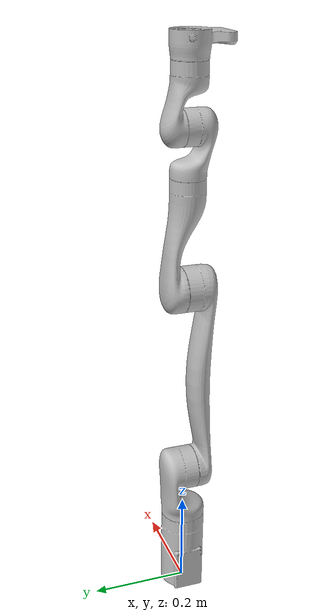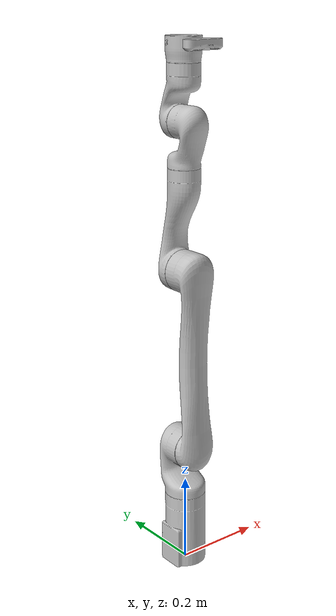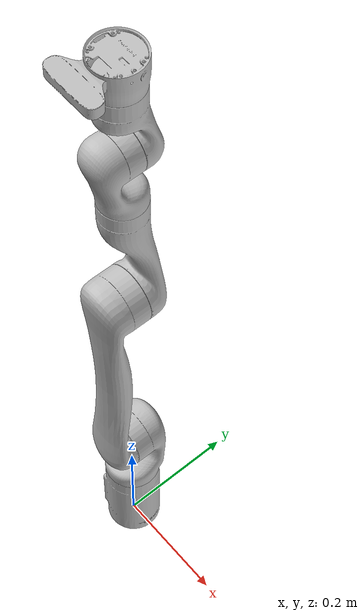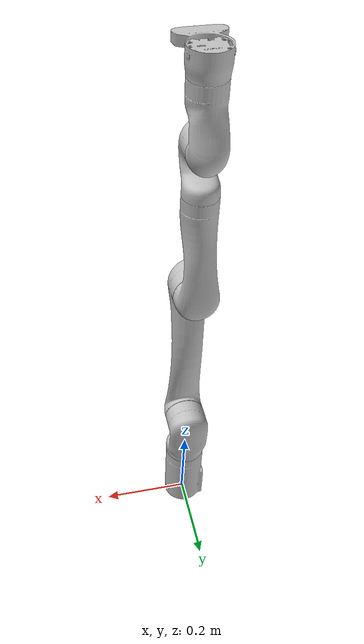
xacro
<?xml version="1.0"?>

<robot name="gen3" xmlns:xacro="http://ros.org/wiki/xacro">

    <!-- Arguments -->
    <xacro:arg name="arm" default="gen3" />
    <xacro:arg name="dof" default="6" />
    <xacro:arg name="vision" default="true" />
    <xacro:arg name="base" default="false"/>

    <xacro:arg name="gripper" default="" />

    <xacro:arg name="sim" default="true" />
    <xacro:arg name="prefix" default="" />

    <xacro:include filename="$(find kortex_description)/robots/kortex_robot.xacro" />
    <xacro:load_robot arm="$(arg arm)" gripper="$(arg gripper)" dof="$(arg dof)" vision="$(arg vision)" sim="$(arg sim)" prefix="$(arg prefix)" base="$(arg base)"/>

</robot>

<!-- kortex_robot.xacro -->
<robot xmlns:xacro="http://ros.org/wiki/xacro">

    <xacro:macro name="load_robot" params="arm gripper dof vision sim prefix parent_link:='world' origin_xyz:='0 0 0' origin_rpy:='0 0 0'">

        <!-- Files to include -->
        <xacro:include filename="$(find kortex_description)/arms/${arm}/${dof}dof/urdf/${arm}_macro.xacro" />
        <xacro:unless value="${not gripper}">
            <xacro:include filename="$(find kortex_description)/grippers/${gripper}/urdf/${gripper}_macro.xacro" />
        </xacro:unless>

        <xacro:if value="${sim}">
            <!-- Arm transmission elements-->
            <xacro:include filename="$(find kortex_description)/arms/${arm}/${dof}dof/urdf/${arm}_transmission_macro.xacro" />
            <!-- Gripper transmission elements if there is a gripper-->
            <xacro:unless value="${not gripper}">
                <xacro:include filename="$(find kortex_description)/grippers/${gripper}/urdf/${gripper}_transmission_macro.xacro" />
            </xacro:unless>
        </xacro:if>

        <!-- Run the macros and mount the robot -->

        <!-- For gazebo when parent_link is world -->
        <xacro:if value="${(sim and parent_link == 'world')}">
            <link name="world" />
        </xacro:if>

        <!-- Mount robot with the world or base robot -->
        <joint name="${prefix}mount_joint" type="fixed">
            <child link="${prefix}base_link" />
            <parent link="${parent_link}" />
            <origin xyz="${origin_xyz}" rpy="${origin_rpy}"/>
        </joint>

        <!-- Load the arm -->
        <xacro:load_arm parent="" dof="${dof}" vision="${vision}" prefix="${prefix}">
            <origin xyz="0 0 0" rpy="0 0 0"/>
        </xacro:load_arm>

        <!-- Load the gripper -->
        <xacro:unless value="${not gripper}">
            <!-- last_arm_link is defined in "$(find kortex_description)/arms/${arm}/urdf/${arm}_macro.xacro" -->
            <xacro:load_gripper parent="${prefix}${last_arm_link}"  prefix="${prefix}"/>
        </xacro:unless>
        <!-- If no gripper, define tool frame here -->
        <xacro:if value="${not gripper}">
            <link name="${prefix}tool_frame"/>
            <joint name="${prefix}tool_frame_joint" type="fixed">
                <origin xyz="0 0 0" rpy="0 0 0" />
                <parent link="${prefix}${last_arm_link}" />
                <child link="${prefix}tool_frame" />
                <axis xyz="0 0 0" />
            </joint>
        </xacro:if>

        <!-- Load the Gazebo transmissions and gazebo_ros_control plugin -->
        <xacro:if value="${sim}">

            <xacro:load_gazebo_arm_transmissions prefix="${prefix}"/>

            <xacro:unless value="${not gripper}">
                <xacro:load_gazebo_gripper_transmissions prefix="${prefix}"/>
            </xacro:unless>

            <gazebo>
                <plugin name="gazebo_ros_control" filename="libgazebo_ros_control.so">
                    <legacyModeNS>true</legacyModeNS>
                </plugin>
            </gazebo>

        </xacro:if>
    </xacro:macro>
</robot>

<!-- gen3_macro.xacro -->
<robot name="gen3_arm" xmlns:xacro="http://ros.org/wiki/xacro">

  <!-- Propagate last link name information because it is the gripper's parent link -->
  <xacro:property name="last_arm_link" value="end_effector_link"/>

  <xacro:macro name="load_arm" params="parent:='' dof vision prefix *origin">
    <link name="${prefix}base_link">
      <inertial>
        <origin xyz="-0.000648 -0.000166 0.084487" rpy="0 0 0" />
        <mass value="1.697" />
        <inertia ixx="0.004622" ixy="9E-06" ixz="6E-05" iyy="0.004495" iyz="9E-06" izz="0.002079" />
      </inertial>
      <visual>
        <origin xyz="0 0 0" rpy="0 0 0" />
        <geometry>
          <mesh filename="package://kortex_description/arms/gen3/${dof}dof/meshes/base_link.STL" />
        </geometry>
        <material name="">
          <color rgba="0.75294 0.75294 0.75294 1" />
        </material>
      </visual>
      <collision>
        <origin xyz="0 0 0" rpy="0 0 0" />
        <geometry>
          <mesh filename="package://kortex_description/arms/gen3/${dof}dof/meshes/base_link.STL" />
        </geometry>
      </collision>
    </link>
    <link name="${prefix}shoulder_link">
      <inertial>
        <origin xyz="-2.3E-05 -0.010364 -0.07336" rpy="0 0 0" />
        <mass value="1.377" />
        <inertia ixx="0.00457" ixy="1E-06" ixz="2E-06" iyy="0.004831" iyz="0.000448" izz="0.001409" />
      </inertial>
      <visual>
        <origin xyz="0 0 0" rpy="0 0 0" />
        <geometry>
          <mesh filename="package://kortex_description/arms/gen3/${dof}dof/meshes/shoulder_link.STL" />
        </geometry>
        <material name="">
          <color rgba="0.75294 0.75294 0.75294 1" />
        </material>
      </visual>
      <collision>
        <origin xyz="0 0 0" rpy="0 0 0" />
        <geometry>
          <mesh filename="package://kortex_description/arms/gen3/${dof}dof/meshes/shoulder_link.STL" />
        </geometry>
      </collision>
    </link>
    <joint name="${prefix}joint_1" type="continuous">
      <origin xyz="0 0 0.15643" rpy="-3.1416 0.0 0.0" />
      <parent link="${prefix}base_link" />
      <child link="${prefix}shoulder_link" />
      <axis xyz="0 0 1" />
      <limit effort="39" velocity="1.3963" />
    </joint>
    <link name="${prefix}bicep_link">
      <inertial>
        <origin xyz="3.5E-05 -0.208207 -0.01889" rpy="0 0 0" />
        <mass value="1.262" />
        <inertia ixx="0.046752" ixy="-9E-06" ixz="0" iyy="0.00085" iyz="-9.8E-05" izz="0.047188" />
      </inertial>
      <visual>
        <origin xyz="0 0 0" rpy="0 0 0" />
        <geometry>
          <mesh filename="package://kortex_description/arms/gen3/${dof}dof/meshes/bicep_link.STL" />
        </geometry>
        <material name="">
          <color rgba="0.75294 0.75294 0.75294 1" />
        </material>
      </visual>
      <collision>
        <origin xyz="0 0 0" rpy="0 0 0" />
        <geometry>
          <mesh filename="package://kortex_description/arms/gen3/${dof}dof/meshes/bicep_link.STL" />
        </geometry>
      </collision>
    </link>
    <joint name="${prefix}joint_2" type="revolute">
      <origin xyz="0 0.005375 -0.12838" rpy="1.5708 0.0 0.0" />
      <parent link="${prefix}shoulder_link" />
      <child link="${prefix}bicep_link" />
      <axis xyz="0 0 1" />
      <limit lower="-2.24" upper="2.24" effort="39" velocity="1.3963" />
    </joint>
    <link name="${prefix}forearm_link">
      <inertial>
        <origin xyz="1.8E-05 0.076168 -0.01397" rpy="0 0 0" />
        <mass value="0.93" />
        <inertia ixx="0.008292" ixy="-1E-06" ixz="0" iyy="0.000628" iyz="0.000432" izz="0.008464" />
      </inertial>
      <visual>
        <origin xyz="0 0 0" rpy="0 0 0" />
        <geometry>
          <mesh filename="package://kortex_description/arms/gen3/${dof}dof/meshes/forearm_link.STL" />
        </geometry>
        <material name="">
          <color rgba="0.75294 0.75294 0.75294 1" />
        </material>
      </visual>
      <collision>
        <origin xyz="0 0 0" rpy="0 0 0" />
        <geometry>
          <mesh filename="package://kortex_description/arms/gen3/${dof}dof/meshes/forearm_link.STL" />
        </geometry>
      </collision>
    </link>
    <joint name="${prefix}joint_3" type="revolute">
      <origin xyz="0 -0.41 0" rpy="3.1416 0 0" />
      <parent link="${prefix}bicep_link" />
      <child link="${prefix}forearm_link" />
      <axis xyz="0 0 1" />
      <limit lower="-2.57" upper="2.57" effort="39" velocity="1.3963" />
    </joint>
    <link name="${prefix}spherical_wrist_1_link">
      <inertial>
        <origin xyz="-1E-06 0.008486 -0.062937" rpy="0 0 0" />
        <mass value="0.6781" />
        <inertia ixx="0.001645" ixy="0" ixz="0" iyy="0.001666" iyz="-0.000234" izz="0.000389" />
      </inertial>
      <visual>
        <origin xyz="0 0 0" rpy="0 0 0" />
        <geometry>
          <mesh filename="package://kortex_description/arms/gen3/${dof}dof/meshes/spherical_wrist_1_link.STL" />
        </geometry>
        <material name="">
          <color rgba="0.75294 0.75294 0.75294 1" />
        </material>
      </visual>
      <collision>
        <origin xyz="0 0 0" rpy="0 0 0" />
        <geometry>
          <mesh filename="package://kortex_description/arms/gen3/${dof}dof/meshes/spherical_wrist_1_link.STL" />
        </geometry>
      </collision>
    </link>
    <joint name="${prefix}joint_4" type="continuous">
      <origin xyz="0 0.20843 -0.006375" rpy="1.5708 0.0 0.0" />
      <parent link="${prefix}forearm_link" />
      <child link="${prefix}spherical_wrist_1_link" />
      <axis xyz="0 0 1" />
      <limit effort="9" velocity="1.2218" />
    </joint>
    <link name="${prefix}spherical_wrist_2_link">
      <inertial>
        <origin xyz="-1E-06 0.046429 -0.008704" rpy="0 0 0" />
        <mass value="0.678" />
        <inertia ixx="0.001685" ixy="0" ixz="0" iyy="0.0004" iyz="0.000255" izz="0.001696" />
      </inertial>
      <visual>
        <origin xyz="0 0 0" rpy="0 0 0" />
        <geometry>
          <mesh filename="package://kortex_description/arms/gen3/${dof}dof/meshes/spherical_wrist_2_link.STL" />
        </geometry>
        <material name="">
          <color rgba="0.75294 0.75294 0.75294 1" />
        </material>
      </visual>
      <collision>
        <origin xyz="0 0 0" rpy="0 0 0" />
        <geometry>
          <mesh filename="package://kortex_description/arms/gen3/${dof}dof/meshes/spherical_wrist_2_link.STL" />
        </geometry>
      </collision>
    </link>
    <joint name="${prefix}joint_5" type="revolute">
      <origin xyz="0 -0.00017505 -0.10593" rpy="-1.5708 0.0 0.0" />
      <parent link="${prefix}spherical_wrist_1_link" />
      <child link="${prefix}spherical_wrist_2_link" />
      <axis xyz="0 0 1" />
      <limit lower="-2.09" upper="2.09" effort="9" velocity="1.2218" />
    </joint>
    <xacro:if value="${vision}">
    <link name="${prefix}bracelet_link">
      <inertial>
        <origin xyz="0.000281 0.011402 -0.029798" rpy="0 0 0" />
        <mass value="0.5" />
        <inertia ixx="0.000587" ixy="3E-06" ixz="3E-06" iyy="0.000369" iyz="-0.000118" izz="0.000609" />
      </inertial>
      <visual>
        <origin xyz="0 0 0" rpy="0 0 0" />
        <geometry>
          <mesh filename="package://kortex_description/arms/gen3/${dof}dof/meshes/bracelet_with_vision_link.STL" />
        </geometry>
        <material name="">
          <color rgba="0.75294 0.75294 0.75294 1" />
        </material>
      </visual>
      <collision>
        <origin xyz="0 0 0" rpy="0 0 0" />
        <geometry>
          <mesh filename="package://kortex_description/arms/gen3/${dof}dof/meshes/bracelet_with_vision_link.STL" />
        </geometry>
      </collision>
    </link>
    </xacro:if>
    <xacro:unless value="${vision}">
    <link name="${prefix}bracelet_link">
      <inertial>
        <origin xyz="-9.3E-05 0.000132 -0.022905" rpy="0 0 0" />
        <mass value="0.364" />
        <inertia ixx="0.000214" ixy="0" ixz="1E-06" iyy="0.000223" iyz="-2E-06" izz="0.00024" />
      </inertial>
      <visual>
        <origin xyz="0 0 0" rpy="0 0 0" />
        <geometry>
          <mesh filename="package://kortex_description/arms/gen3/${dof}dof/meshes/bracelet_no_vision_link.STL" />
        </geometry>
        <material name="">
          <color rgba="0.75294 0.75294 0.75294 1" />
        </material>
      </visual>
      <collision>
        <origin xyz="0 0 0" rpy="0 0 0" />
        <geometry>
          <mesh filename="package://kortex_description/arms/gen3/${dof}dof/meshes/bracelet_no_vision_link.STL" />
        </geometry>
      </collision>
    </link>
    </xacro:unless>
    <joint name="${prefix}joint_6" type="continuous">
      <origin xyz="0 0.10593 -0.00017505" rpy="1.5708 0.0 0.0" />
      <parent link="${prefix}spherical_wrist_2_link" />
      <child link="${prefix}bracelet_link" />
      <axis xyz="0 0 1" />
      <limit effort="9" velocity="1.2218" />
    </joint>
    <link name="${prefix}end_effector_link" />
    <joint
      name="${prefix}end_effector"
      type="fixed">
      <origin xyz="0 0 -0.0615250000000001" rpy="3.14159265358979 1.09937075168372E-32 3.14159265358979" />
      <parent
        link="${prefix}bracelet_link" />
      <child
        link="${prefix}end_effector_link" />
      <axis
        xyz="0 0 0" />
    </joint>
    <xacro:if value="${vision}">
      <link name="${prefix}camera_link" />
      <joint name="${prefix}camera_module" type="fixed">
        <origin xyz="0 0.05639 -0.00305" rpy="3.14159265358979 3.14159265358979 0" />
        <parent link="${prefix}end_effector_link" />
        <child  link="${prefix}camera_link" />
      </joint>
      <link name="${prefix}camera_depth_frame" />
      <joint name="${prefix}depth_module" type="fixed">
        <origin xyz="0.0275 0.066 -0.00305" rpy="3.14159265358979 3.14159265358979 0" />
        <parent link="${prefix}end_effector_link" />
        <child  link="${prefix}camera_depth_frame" />
      </joint>
      <link name="${prefix}camera_color_frame" />
      <joint name="${prefix}color_module" type="fixed">
        <origin xyz="0 0.05639 -0.00305" rpy="3.14159265358979 3.14159265358979 0" />
        <parent link="${prefix}end_effector_link" />
        <child  link="${prefix}camera_color_frame" />
      </joint>
    </xacro:if>
  </xacro:macro>
</robot>
